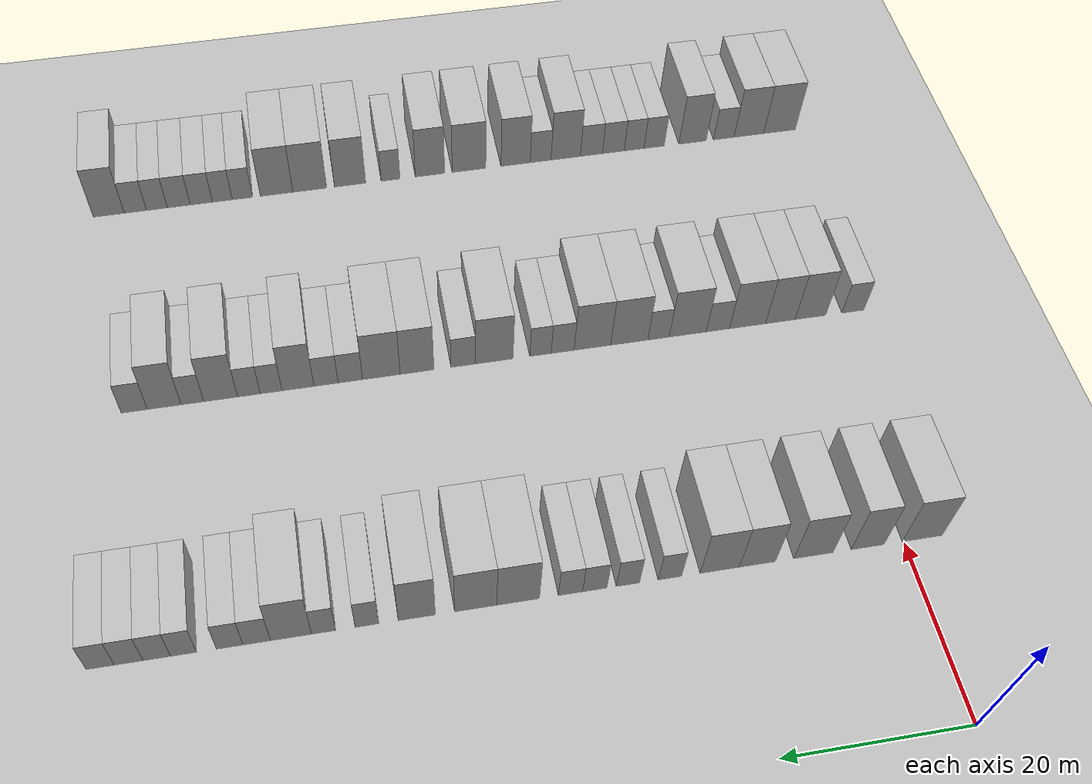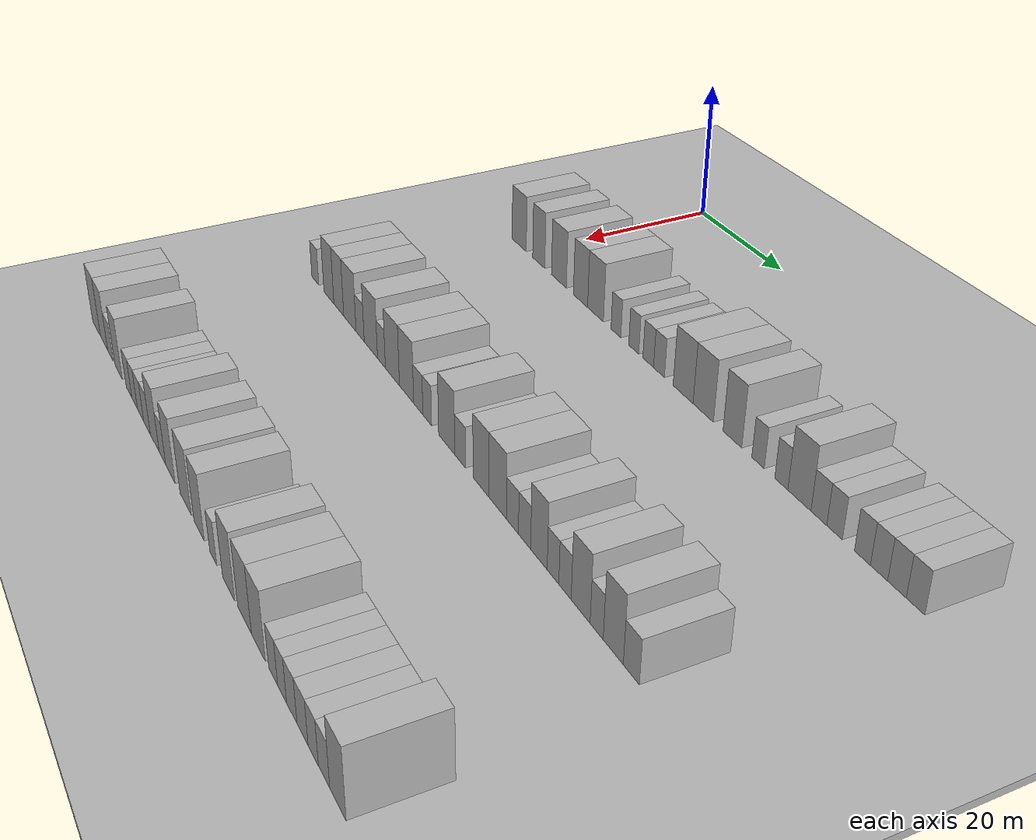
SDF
<sdf version="1.6">
 <world name="default">
  <include><name>ground_plane_1</name><uri>model://HANNAS_ground_plane</uri></include>
  <include>
   <name>ground_plane_2</name>
   <uri>model://HANNAS_ground_plane</uri>
   <pose>100 0 0  0 0 0</pose>
  </include>
  <model name="building_72">
   <static>1</static>
   <pose>25.0000 -1.7976 0 0.000000 0.000000 0.000000</pose>
   <link name="link">
    <pose>0 0 4.50 0 0 0</pose>
    <collision name="collision"><geometry><box><size>10.0000 4.4605 9.0000</size></box></geometry></collision>
    <visual name="visual">
     <cast_shadows>0</cast_shadows>
     <geometry><box><size>10.0000 4.4605 9.0000</size></box></geometry>
     <material>
      <script>
       <uri>model://HANNAS_wall/materials/scripts</uri>
       <uri>model://HANNAS_wall/materials/textures</uri>
       <name>vrc/HANNAS_wall</name>
      </script>
     </material>
    </visual>
   </link>
  </model>
  <model name="building_73">
   <static>1</static>
   <pose>25.0000 4.2577 0 0.000000 0.000000 0.000000</pose>
   <link name="link">
    <pose>0 0 4.50 0 0 0</pose>
    <collision name="collision"><geometry><box><size>10.0000 3.6501 9.0000</size></box></geometry></collision>
    <visual name="visual">
     <cast_shadows>0</cast_shadows>
     <geometry><box><size>10.0000 3.6501 9.0000</size></box></geometry>
     <material>
      <script>
       <uri>model://HANNAS_wall/materials/scripts</uri>
       <uri>model://HANNAS_wall/materials/textures</uri>
       <name>vrc/HANNAS_wall</name>
      </script>
     </material>
    </visual>
   </link>
  </model>
  <model name="building_74">
   <static>1</static>
   <pose>25.0000 10.2392 0 0.000000 0.000000 0.000000</pose>
   <link name="link">
    <pose>0 0 4.50 0 0 0</pose>
    <collision name="collision"><geometry><box><size>10.0000 4.3129 9.0000</size></box></geometry></collision>
    <visual name="visual">
     <cast_shadows>0</cast_shadows>
     <geometry><box><size>10.0000 4.3129 9.0000</size></box></geometry>
     <material>
      <script>
       <uri>model://HANNAS_wall/materials/scripts</uri>
       <uri>model://HANNAS_wall/materials/textures</uri>
       <name>vrc/HANNAS_wall</name>
      </script>
     </material>
    </visual>
   </link>
  </model>
  <model name="building_75">
   <static>1</static>
   <pose>25.0000 16.3610 0 0.000000 0.000000 0.000000</pose>
   <link name="link">
    <pose>0 0 4.50 0 0 0</pose>
    <collision name="collision"><geometry><box><size>10.0000 3.9307 9.0000</size></box></geometry></collision>
    <visual name="visual">
     <cast_shadows>0</cast_shadows>
     <geometry><box><size>10.0000 3.9307 9.0000</size></box></geometry>
     <material>
      <script>
       <uri>model://HANNAS_wall/materials/scripts</uri>
       <uri>model://HANNAS_wall/materials/textures</uri>
       <name>vrc/HANNAS_wall</name>
      </script>
     </material>
    </visual>
   </link>
  </model>
  <model name="building_76">
   <static>1</static>
   <pose>25.0000 20.4498 0 0.000000 0.000000 0.000000</pose>
   <link name="link">
    <pose>0 0 4.50 0 0 0</pose>
    <collision name="collision"><geometry><box><size>10.0000 4.2468 9.0000</size></box></geometry></collision>
    <visual name="visual">
     <cast_shadows>0</cast_shadows>
     <geometry><box><size>10.0000 4.2468 9.0000</size></box></geometry>
     <material>
      <script>
       <uri>model://HANNAS_wall/materials/scripts</uri>
       <uri>model://HANNAS_wall/materials/textures</uri>
       <name>vrc/HANNAS_wall</name>
      </script>
     </material>
    </visual>
   </link>
  </model>
  <model name="building_77">
   <static>1</static>
   <pose>25.0000 25.8314 0 0.000000 0.000000 0.000000</pose>
   <link name="link">
    <pose>0 0 3.00 0 0 0</pose>
    <collision name="collision"><geometry><box><size>10.0000 2.5165 6.0000</size></box></geometry></collision>
    <visual name="visual">
     <cast_shadows>0</cast_shadows>
     <geometry><box><size>10.0000 2.5165 6.0000</size></box></geometry>
     <material>
      <script>
       <uri>model://HANNAS_wall/materials/scripts</uri>
       <uri>model://HANNAS_wall/materials/textures</uri>
       <name>vrc/HANNAS_wall</name>
      </script>
     </material>
    </visual>
   </link>
  </model>
  <model name="building_78">
   <static>1</static>
   <pose>25.0000 30.3293 0 0.000000 0.000000 0.000000</pose>
   <link name="link">
    <pose>0 0 3.00 0 0 0</pose>
    <collision name="collision"><geometry><box><size>10.0000 2.4791 6.0000</size></box></geometry></collision>
    <visual name="visual">
     <cast_shadows>0</cast_shadows>
     <geometry><box><size>10.0000 2.4791 6.0000</size></box></geometry>
     <material>
      <script>
       <uri>model://HANNAS_wall/materials/scripts</uri>
       <uri>model://HANNAS_wall/materials/textures</uri>
       <name>vrc/HANNAS_wall</name>
      </script>
     </material>
    </visual>
   </link>
  </model>
  <model name="building_79">
   <static>1</static>
   <pose>25.0000 33.8580 0 0.000000 0.000000 0.000000</pose>
   <link name="link">
    <pose>0 0 3.00 0 0 0</pose>
    <collision name="collision"><geometry><box><size>10.0000 2.5784 6.0000</size></box></geometry></collision>
    <visual name="visual">
     <cast_shadows>0</cast_shadows>
     <geometry><box><size>10.0000 2.5784 6.0000</size></box></geometry>
     <material>
      <script>
       <uri>model://HANNAS_wall/materials/scripts</uri>
       <uri>model://HANNAS_wall/materials/textures</uri>
       <name>vrc/HANNAS_wall</name>
      </script>
     </material>
    </visual>
   </link>
  </model>
  <model name="building_80">
   <static>1</static>
   <pose>25.0000 36.4311 0 0.000000 0.000000 0.000000</pose>
   <link name="link">
    <pose>0 0 3.00 0 0 0</pose>
    <collision name="collision"><geometry><box><size>10.0000 2.5676 6.0000</size></box></geometry></collision>
    <visual name="visual">
     <cast_shadows>0</cast_shadows>
     <geometry><box><size>10.0000 2.5676 6.0000</size></box></geometry>
     <material>
      <script>
       <uri>model://HANNAS_wall/materials/scripts</uri>
       <uri>model://HANNAS_wall/materials/textures</uri>
       <name>vrc/HANNAS_wall</name>
      </script>
     </material>
    </visual>
   </link>
  </model>
  <model name="building_81">
   <static>1</static>
   <pose>25.0000 41.9562 0 0.000000 0.000000 0.000000</pose>
   <link name="link">
    <pose>0 0 4.50 0 0 0</pose>
    <collision name="collision"><geometry><box><size>10.0000 4.4827 9.0000</size></box></geometry></collision>
    <visual name="visual">
     <cast_shadows>0</cast_shadows>
     <geometry><box><size>10.0000 4.4827 9.0000</size></box></geometry>
     <material>
      <script>
       <uri>model://HANNAS_wall/materials/scripts</uri>
       <uri>model://HANNAS_wall/materials/textures</uri>
       <name>vrc/HANNAS_wall</name>
      </script>
     </material>
    </visual>
   </link>
  </model>
  <model name="building_82">
   <static>1</static>
   <pose>25.0000 46.3979 0 0.000000 0.000000 0.000000</pose>
   <link name="link">
    <pose>0 0 4.50 0 0 0</pose>
    <collision name="collision"><geometry><box><size>10.0000 4.4008 9.0000</size></box></geometry></collision>
    <visual name="visual">
     <cast_shadows>0</cast_shadows>
     <geometry><box><size>10.0000 4.4008 9.0000</size></box></geometry>
     <material>
      <script>
       <uri>model://HANNAS_wall/materials/scripts</uri>
       <uri>model://HANNAS_wall/materials/textures</uri>
       <name>vrc/HANNAS_wall</name>
      </script>
     </material>
    </visual>
   </link>
  </model>
  <model name="building_83">
   <static>1</static>
   <pose>25.0000 52.5170 0 0.000000 0.000000 0.000000</pose>
   <link name="link">
    <pose>0 0 4.50 0 0 0</pose>
    <collision name="collision"><geometry><box><size>10.0000 3.8372 9.0000</size></box></geometry></collision>
    <visual name="visual">
     <cast_shadows>0</cast_shadows>
     <geometry><box><size>10.0000 3.8372 9.0000</size></box></geometry>
     <material>
      <script>
       <uri>model://HANNAS_wall/materials/scripts</uri>
       <uri>model://HANNAS_wall/materials/textures</uri>
       <name>vrc/HANNAS_wall</name>
      </script>
     </material>
    </visual>
   </link>
  </model>
  <model name="building_84">
   <static>1</static>
   <pose>25.0000 57.6536 0 0.000000 0.000000 0.000000</pose>
   <link name="link">
    <pose>0 0 3.00 0 0 0</pose>
    <collision name="collision"><geometry><box><size>10.0000 2.4360 6.0000</size></box></geometry></collision>
    <visual name="visual">
     <cast_shadows>0</cast_shadows>
     <geometry><box><size>10.0000 2.4360 6.0000</size></box></geometry>
     <material>
      <script>
       <uri>model://HANNAS_wall/materials/scripts</uri>
       <uri>model://HANNAS_wall/materials/textures</uri>
       <name>vrc/HANNAS_wall</name>
      </script>
     </material>
    </visual>
   </link>
  </model>
  <model name="building_85">
   <static>1</static>
   <pose>25.0000 62.0953 0 0.000000 0.000000 0.000000</pose>
   <link name="link">
    <pose>0 0 3.00 0 0 0</pose>
    <collision name="collision"><geometry><box><size>10.0000 2.4474 6.0000</size></box></geometry></collision>
    <visual name="visual">
     <cast_shadows>0</cast_shadows>
     <geometry><box><size>10.0000 2.4474 6.0000</size></box></geometry>
     <material>
      <script>
       <uri>model://HANNAS_wall/materials/scripts</uri>
       <uri>model://HANNAS_wall/materials/textures</uri>
       <name>vrc/HANNAS_wall</name>
      </script>
     </material>
    </visual>
   </link>
  </model>
  <model name="building_86">
   <static>1</static>
   <pose>25.0000 65.4123 0 0.000000 0.000000 0.000000</pose>
   <link name="link">
    <pose>0 0 4.50 0 0 0</pose>
    <collision name="collision"><geometry><box><size>10.0000 4.1866 9.0000</size></box></geometry></collision>
    <visual name="visual">
     <cast_shadows>0</cast_shadows>
     <geometry><box><size>10.0000 4.1866 9.0000</size></box></geometry>
     <material>
      <script>
       <uri>model://HANNAS_wall/materials/scripts</uri>
       <uri>model://HANNAS_wall/materials/textures</uri>
       <name>vrc/HANNAS_wall</name>
      </script>
     </material>
    </visual>
   </link>
  </model>
  <model name="building_87">
   <static>1</static>
   <pose>25.0000 68.8927 0 0.000000 0.000000 0.000000</pose>
   <link name="link">
    <pose>0 0 3.00 0 0 0</pose>
    <collision name="collision"><geometry><box><size>10.0000 2.7743 6.0000</size></box></geometry></collision>
    <visual name="visual">
     <cast_shadows>0</cast_shadows>
     <geometry><box><size>10.0000 2.7743 6.0000</size></box></geometry>
     <material>
      <script>
       <uri>model://HANNAS_wall/materials/scripts</uri>
       <uri>model://HANNAS_wall/materials/textures</uri>
       <name>vrc/HANNAS_wall</name>
      </script>
     </material>
    </visual>
   </link>
  </model>
  <model name="building_88">
   <static>1</static>
   <pose>25.0000 71.6180 0 0.000000 0.000000 0.000000</pose>
   <link name="link">
    <pose>0 0 3.00 0 0 0</pose>
    <collision name="collision"><geometry><box><size>10.0000 2.6764 6.0000</size></box></geometry></collision>
    <visual name="visual">
     <cast_shadows>0</cast_shadows>
     <geometry><box><size>10.0000 2.6764 6.0000</size></box></geometry>
     <material>
      <script>
       <uri>model://HANNAS_wall/materials/scripts</uri>
       <uri>model://HANNAS_wall/materials/textures</uri>
       <name>vrc/HANNAS_wall</name>
      </script>
     </material>
    </visual>
   </link>
  </model>
  <model name="building_89">
   <static>1</static>
   <pose>25.0000 76.2591 0 0.000000 0.000000 0.000000</pose>
   <link name="link">
    <pose>0 0 3.00 0 0 0</pose>
    <collision name="collision"><geometry><box><size>10.0000 2.6058 6.0000</size></box></geometry></collision>
    <visual name="visual">
     <cast_shadows>0</cast_shadows>
     <geometry><box><size>10.0000 2.6058 6.0000</size></box></geometry>
     <material>
      <script>
       <uri>model://HANNAS_wall/materials/scripts</uri>
       <uri>model://HANNAS_wall/materials/textures</uri>
       <name>vrc/HANNAS_wall</name>
      </script>
     </material>
    </visual>
   </link>
  </model>
  <model name="building_90">
   <static>1</static>
   <pose>25.0000 78.9266 0 0.000000 0.000000 0.000000</pose>
   <link name="link">
    <pose>0 0 3.00 0 0 0</pose>
    <collision name="collision"><geometry><box><size>10.0000 2.7293 6.0000</size></box></geometry></collision>
    <visual name="visual">
     <cast_shadows>0</cast_shadows>
     <geometry><box><size>10.0000 2.7293 6.0000</size></box></geometry>
     <material>
      <script>
       <uri>model://HANNAS_wall/materials/scripts</uri>
       <uri>model://HANNAS_wall/materials/textures</uri>
       <name>vrc/HANNAS_wall</name>
      </script>
     </material>
    </visual>
   </link>
  </model>
  <model name="building_91">
   <static>1</static>
   <pose>25.0000 81.7208 0 0.000000 0.000000 0.000000</pose>
   <link name="link">
    <pose>0 0 3.00 0 0 0</pose>
    <collision name="collision"><geometry><box><size>10.0000 2.8590 6.0000</size></box></geometry></collision>
    <visual name="visual">
     <cast_shadows>0</cast_shadows>
     <geometry><box><size>10.0000 2.8590 6.0000</size></box></geometry>
     <material>
      <script>
       <uri>model://HANNAS_wall/materials/scripts</uri>
       <uri>model://HANNAS_wall/materials/textures</uri>
       <name>vrc/HANNAS_wall</name>
      </script>
     </material>
    </visual>
   </link>
  </model>
  <model name="building_92">
   <static>1</static>
   <pose>25.0000 84.5416 0 0.000000 0.000000 0.000000</pose>
   <link name="link">
    <pose>0 0 3.00 0 0 0</pose>
    <collision name="collision"><geometry><box><size>10.0000 2.7826 6.0000</size></box></geometry></collision>
    <visual name="visual">
     <cast_shadows>0</cast_shadows>
     <geometry><box><size>10.0000 2.7826 6.0000</size></box></geometry>
     <material>
      <script>
       <uri>model://HANNAS_wall/materials/scripts</uri>
       <uri>model://HANNAS_wall/materials/textures</uri>
       <name>vrc/HANNAS_wall</name>
      </script>
     </material>
    </visual>
   </link>
  </model>
  <model name="building_201">
   <static>1</static>
   <pose>55.0000 -4.3574 0 0.000000 0.000000 0.000000</pose>
   <link name="link">
    <pose>0 0 3.00 0 0 0</pose>
    <collision name="collision"><geometry><box><size>10.0000 2.7539 6.0000</size></box></geometry></collision>
    <visual name="visual">
     <cast_shadows>0</cast_shadows>
     <geometry><box><size>10.0000 2.7539 6.0000</size></box></geometry>
     <material>
      <script>
       <uri>model://HANNAS_wall/materials/scripts</uri>
       <uri>model://HANNAS_wall/materials/textures</uri>
       <name>vrc/HANNAS_wall</name>
      </script>
     </material>
    </visual>
   </link>
  </model>
  <model name="building_202">
   <static>1</static>
   <pose>55.0000 0.9174 0 0.000000 0.000000 0.000000</pose>
   <link name="link">
    <pose>0 0 4.50 0 0 0</pose>
    <collision name="collision"><geometry><box><size>10.0000 3.7958 9.0000</size></box></geometry></collision>
    <visual name="visual">
     <cast_shadows>0</cast_shadows>
     <geometry><box><size>10.0000 3.7958 9.0000</size></box></geometry>
     <material>
      <script>
       <uri>model://HANNAS_wall/materials/scripts</uri>
       <uri>model://HANNAS_wall/materials/textures</uri>
       <name>vrc/HANNAS_wall</name>
      </script>
     </material>
    </visual>
   </link>
  </model>
  <model name="building_203">
   <static>1</static>
   <pose>55.0000 4.6442 0 0.000000 0.000000 0.000000</pose>
   <link name="link">
    <pose>0 0 4.50 0 0 0</pose>
    <collision name="collision"><geometry><box><size>10.0000 3.6578 9.0000</size></box></geometry></collision>
    <visual name="visual">
     <cast_shadows>0</cast_shadows>
     <geometry><box><size>10.0000 3.6578 9.0000</size></box></geometry>
     <material>
      <script>
       <uri>model://HANNAS_wall/materials/scripts</uri>
       <uri>model://HANNAS_wall/materials/textures</uri>
       <name>vrc/HANNAS_wall</name>
      </script>
     </material>
    </visual>
   </link>
  </model>
  <model name="building_204">
   <static>1</static>
   <pose>55.0000 8.6825 0 0.000000 0.000000 0.000000</pose>
   <link name="link">
    <pose>0 0 4.50 0 0 0</pose>
    <collision name="collision"><geometry><box><size>10.0000 4.4188 9.0000</size></box></geometry></collision>
    <visual name="visual">
     <cast_shadows>0</cast_shadows>
     <geometry><box><size>10.0000 4.4188 9.0000</size></box></geometry>
     <material>
      <script>
       <uri>model://HANNAS_wall/materials/scripts</uri>
       <uri>model://HANNAS_wall/materials/textures</uri>
       <name>vrc/HANNAS_wall</name>
      </script>
     </material>
    </visual>
   </link>
  </model>
  <model name="building_205">
   <static>1</static>
   <pose>55.0000 12.3122 0 0.000000 0.000000 0.000000</pose>
   <link name="link">
    <pose>0 0 3.00 0 0 0</pose>
    <collision name="collision"><geometry><box><size>10.0000 2.8407 6.0000</size></box></geometry></collision>
    <visual name="visual">
     <cast_shadows>0</cast_shadows>
     <geometry><box><size>10.0000 2.8407 6.0000</size></box></geometry>
     <material>
      <script>
       <uri>model://HANNAS_wall/materials/scripts</uri>
       <uri>model://HANNAS_wall/materials/textures</uri>
       <name>vrc/HANNAS_wall</name>
      </script>
     </material>
    </visual>
   </link>
  </model>
  <model name="building_206">
   <static>1</static>
   <pose>55.0000 15.9813 0 0.000000 0.000000 0.000000</pose>
   <link name="link">
    <pose>0 0 4.50 0 0 0</pose>
    <collision name="collision"><geometry><box><size>10.0000 4.4974 9.0000</size></box></geometry></collision>
    <visual name="visual">
     <cast_shadows>0</cast_shadows>
     <geometry><box><size>10.0000 4.4974 9.0000</size></box></geometry>
     <material>
      <script>
       <uri>model://HANNAS_wall/materials/scripts</uri>
       <uri>model://HANNAS_wall/materials/textures</uri>
       <name>vrc/HANNAS_wall</name>
      </script>
     </material>
    </visual>
   </link>
  </model>
  <model name="building_207">
   <static>1</static>
   <pose>55.0000 19.5245 0 0.000000 0.000000 0.000000</pose>
   <link name="link">
    <pose>0 0 3.00 0 0 0</pose>
    <collision name="collision"><geometry><box><size>10.0000 2.5890 6.0000</size></box></geometry></collision>
    <visual name="visual">
     <cast_shadows>0</cast_shadows>
     <geometry><box><size>10.0000 2.5890 6.0000</size></box></geometry>
     <material>
      <script>
       <uri>model://HANNAS_wall/materials/scripts</uri>
       <uri>model://HANNAS_wall/materials/textures</uri>
       <name>vrc/HANNAS_wall</name>
      </script>
     </material>
    </visual>
   </link>
  </model>
  <model name="building_208">
   <static>1</static>
   <pose>55.0000 23.0603 0 0.000000 0.000000 0.000000</pose>
   <link name="link">
    <pose>0 0 4.50 0 0 0</pose>
    <collision name="collision"><geometry><box><size>10.0000 4.4825 9.0000</size></box></geometry></collision>
    <visual name="visual">
     <cast_shadows>0</cast_shadows>
     <geometry><box><size>10.0000 4.4825 9.0000</size></box></geometry>
     <material>
      <script>
       <uri>model://HANNAS_wall/materials/scripts</uri>
       <uri>model://HANNAS_wall/materials/textures</uri>
       <name>vrc/HANNAS_wall</name>
      </script>
     </material>
    </visual>
   </link>
  </model>
  <model name="building_209">
   <static>1</static>
   <pose>55.0000 27.4932 0 0.000000 0.000000 0.000000</pose>
   <link name="link">
    <pose>0 0 4.50 0 0 0</pose>
    <collision name="collision"><geometry><box><size>10.0000 4.3834 9.0000</size></box></geometry></collision>
    <visual name="visual">
     <cast_shadows>0</cast_shadows>
     <geometry><box><size>10.0000 4.3834 9.0000</size></box></geometry>
     <material>
      <script>
       <uri>model://HANNAS_wall/materials/scripts</uri>
       <uri>model://HANNAS_wall/materials/textures</uri>
       <name>vrc/HANNAS_wall</name>
      </script>
     </material>
    </visual>
   </link>
  </model>
  <model name="building_210">
   <static>1</static>
   <pose>55.0000 31.0489 0 0.000000 0.000000 0.000000</pose>
   <link name="link">
    <pose>0 0 3.00 0 0 0</pose>
    <collision name="collision"><geometry><box><size>10.0000 2.7279 6.0000</size></box></geometry></collision>
    <visual name="visual">
     <cast_shadows>0</cast_shadows>
     <geometry><box><size>10.0000 2.7279 6.0000</size></box></geometry>
     <material>
      <script>
       <uri>model://HANNAS_wall/materials/scripts</uri>
       <uri>model://HANNAS_wall/materials/textures</uri>
       <name>vrc/HANNAS_wall</name>
      </script>
     </material>
    </visual>
   </link>
  </model>
  <model name="building_211">
   <static>1</static>
   <pose>55.0000 33.6861 0 0.000000 0.000000 0.000000</pose>
   <link name="link">
    <pose>0 0 3.00 0 0 0</pose>
    <collision name="collision"><geometry><box><size>10.0000 2.5466 6.0000</size></box></geometry></collision>
    <visual name="visual">
     <cast_shadows>0</cast_shadows>
     <geometry><box><size>10.0000 2.5466 6.0000</size></box></geometry>
     <material>
      <script>
       <uri>model://HANNAS_wall/materials/scripts</uri>
       <uri>model://HANNAS_wall/materials/textures</uri>
       <name>vrc/HANNAS_wall</name>
      </script>
     </material>
    </visual>
   </link>
  </model>
  <model name="building_212">
   <static>1</static>
   <pose>55.0000 39.1798 0 0.000000 0.000000 0.000000</pose>
   <link name="link">
    <pose>0 0 4.50 0 0 0</pose>
    <collision name="collision"><geometry><box><size>10.0000 4.4407 9.0000</size></box></geometry></collision>
    <visual name="visual">
     <cast_shadows>0</cast_shadows>
     <geometry><box><size>10.0000 4.4407 9.0000</size></box></geometry>
     <material>
      <script>
       <uri>model://HANNAS_wall/materials/scripts</uri>
       <uri>model://HANNAS_wall/materials/textures</uri>
       <name>vrc/HANNAS_wall</name>
      </script>
     </material>
    </visual>
   </link>
  </model>
  <model name="building_213">
   <static>1</static>
   <pose>55.0000 42.8368 0 0.000000 0.000000 0.000000</pose>
   <link name="link">
    <pose>0 0 3.00 0 0 0</pose>
    <collision name="collision"><geometry><box><size>10.0000 2.8733 6.0000</size></box></geometry></collision>
    <visual name="visual">
     <cast_shadows>0</cast_shadows>
     <geometry><box><size>10.0000 2.8733 6.0000</size></box></geometry>
     <material>
      <script>
       <uri>model://HANNAS_wall/materials/scripts</uri>
       <uri>model://HANNAS_wall/materials/textures</uri>
       <name>vrc/HANNAS_wall</name>
      </script>
     </material>
    </visual>
   </link>
  </model>
  <model name="building_214">
   <static>1</static>
   <pose>55.0000 48.2433 0 0.000000 0.000000 0.000000</pose>
   <link name="link">
    <pose>0 0 4.50 0 0 0</pose>
    <collision name="collision"><geometry><box><size>10.0000 3.9398 9.0000</size></box></geometry></collision>
    <visual name="visual">
     <cast_shadows>0</cast_shadows>
     <geometry><box><size>10.0000 3.9398 9.0000</size></box></geometry>
     <material>
      <script>
       <uri>model://HANNAS_wall/materials/scripts</uri>
       <uri>model://HANNAS_wall/materials/textures</uri>
       <name>vrc/HANNAS_wall</name>
      </script>
     </material>
    </visual>
   </link>
  </model>
  <model name="building_215">
   <static>1</static>
   <pose>55.0000 52.3946 0 0.000000 0.000000 0.000000</pose>
   <link name="link">
    <pose>0 0 4.50 0 0 0</pose>
    <collision name="collision"><geometry><box><size>10.0000 4.3627 9.0000</size></box></geometry></collision>
    <visual name="visual">
     <cast_shadows>0</cast_shadows>
     <geometry><box><size>10.0000 4.3627 9.0000</size></box></geometry>
     <material>
      <script>
       <uri>model://HANNAS_wall/materials/scripts</uri>
       <uri>model://HANNAS_wall/materials/textures</uri>
       <name>vrc/HANNAS_wall</name>
      </script>
     </material>
    </visual>
   </link>
  </model>
  <model name="building_216">
   <static>1</static>
   <pose>55.0000 55.9916 0 0.000000 0.000000 0.000000</pose>
   <link name="link">
    <pose>0 0 3.00 0 0 0</pose>
    <collision name="collision"><geometry><box><size>10.0000 2.8313 6.0000</size></box></geometry></collision>
    <visual name="visual">
     <cast_shadows>0</cast_shadows>
     <geometry><box><size>10.0000 2.8313 6.0000</size></box></geometry>
     <material>
      <script>
       <uri>model://HANNAS_wall/materials/scripts</uri>
       <uri>model://HANNAS_wall/materials/textures</uri>
       <name>vrc/HANNAS_wall</name>
      </script>
     </material>
    </visual>
   </link>
  </model>
  <model name="building_217">
   <static>1</static>
   <pose>55.0000 58.8022 0 0.000000 0.000000 0.000000</pose>
   <link name="link">
    <pose>0 0 3.00 0 0 0</pose>
    <collision name="collision"><geometry><box><size>10.0000 2.7897 6.0000</size></box></geometry></collision>
    <visual name="visual">
     <cast_shadows>0</cast_shadows>
     <geometry><box><size>10.0000 2.7897 6.0000</size></box></geometry>
     <material>
      <script>
       <uri>model://HANNAS_wall/materials/scripts</uri>
       <uri>model://HANNAS_wall/materials/textures</uri>
       <name>vrc/HANNAS_wall</name>
      </script>
     </material>
    </visual>
   </link>
  </model>
  <model name="building_218">
   <static>1</static>
   <pose>55.0000 62.0312 0 0.000000 0.000000 0.000000</pose>
   <link name="link">
    <pose>0 0 4.50 0 0 0</pose>
    <collision name="collision"><geometry><box><size>10.0000 3.6683 9.0000</size></box></geometry></collision>
    <visual name="visual">
     <cast_shadows>0</cast_shadows>
     <geometry><box><size>10.0000 3.6683 9.0000</size></box></geometry>
     <material>
      <script>
       <uri>model://HANNAS_wall/materials/scripts</uri>
       <uri>model://HANNAS_wall/materials/textures</uri>
       <name>vrc/HANNAS_wall</name>
      </script>
     </material>
    </visual>
   </link>
  </model>
  <model name="building_219">
   <static>1</static>
   <pose>55.0000 65.1138 0 0.000000 0.000000 0.000000</pose>
   <link name="link">
    <pose>0 0 3.00 0 0 0</pose>
    <collision name="collision"><geometry><box><size>10.0000 2.4968 6.0000</size></box></geometry></collision>
    <visual name="visual">
     <cast_shadows>0</cast_shadows>
     <geometry><box><size>10.0000 2.4968 6.0000</size></box></geometry>
     <material>
      <script>
       <uri>model://HANNAS_wall/materials/scripts</uri>
       <uri>model://HANNAS_wall/materials/textures</uri>
       <name>vrc/HANNAS_wall</name>
      </script>
     </material>
    </visual>
   </link>
  </model>
  <model name="building_220">
   <static>1</static>
   <pose>55.0000 67.6531 0 0.000000 0.000000 0.000000</pose>
   <link name="link">
    <pose>0 0 3.00 0 0 0</pose>
    <collision name="collision"><geometry><box><size>10.0000 2.5818 6.0000</size></box></geometry></collision>
    <visual name="visual">
     <cast_shadows>0</cast_shadows>
     <geometry><box><size>10.0000 2.5818 6.0000</size></box></geometry>
     <material>
      <script>
       <uri>model://HANNAS_wall/materials/scripts</uri>
       <uri>model://HANNAS_wall/materials/textures</uri>
       <name>vrc/HANNAS_wall</name>
      </script>
     </material>
    </visual>
   </link>
  </model>
  <model name="building_221">
   <static>1</static>
   <pose>55.0000 70.8635 0 0.000000 0.000000 0.000000</pose>
   <link name="link">
    <pose>0 0 4.50 0 0 0</pose>
    <collision name="collision"><geometry><box><size>10.0000 3.8391 9.0000</size></box></geometry></collision>
    <visual name="visual">
     <cast_shadows>0</cast_shadows>
     <geometry><box><size>10.0000 3.8391 9.0000</size></box></geometry>
     <material>
      <script>
       <uri>model://HANNAS_wall/materials/scripts</uri>
       <uri>model://HANNAS_wall/materials/textures</uri>
       <name>vrc/HANNAS_wall</name>
      </script>
     </material>
    </visual>
   </link>
  </model>
  <model name="building_222">
   <static>1</static>
   <pose>55.0000 74.0676 0 0.000000 0.000000 0.000000</pose>
   <link name="link">
    <pose>0 0 3.00 0 0 0</pose>
    <collision name="collision"><geometry><box><size>10.0000 2.5691 6.0000</size></box></geometry></collision>
    <visual name="visual">
     <cast_shadows>0</cast_shadows>
     <geometry><box><size>10.0000 2.5691 6.0000</size></box></geometry>
     <material>
      <script>
       <uri>model://HANNAS_wall/materials/scripts</uri>
       <uri>model://HANNAS_wall/materials/textures</uri>
       <name>vrc/HANNAS_wall</name>
      </script>
     </material>
    </visual>
   </link>
  </model>
  <model name="building_223">
   <static>1</static>
   <pose>55.0000 77.2503 0 0.000000 0.000000 0.000000</pose>
   <link name="link">
    <pose>0 0 4.50 0 0 0</pose>
    <collision name="collision"><geometry><box><size>10.0000 3.7965 9.0000</size></box></geometry></collision>
    <visual name="visual">
     <cast_shadows>0</cast_shadows>
     <geometry><box><size>10.0000 3.7965 9.0000</size></box></geometry>
     <material>
      <script>
       <uri>model://HANNAS_wall/materials/scripts</uri>
       <uri>model://HANNAS_wall/materials/textures</uri>
       <name>vrc/HANNAS_wall</name>
      </script>
     </material>
    </visual>
   </link>
  </model>
  <model name="building_224">
   <static>1</static>
   <pose>55.0000 80.6144 0 0.000000 0.000000 0.000000</pose>
   <link name="link">
    <pose>0 0 3.00 0 0 0</pose>
    <collision name="collision"><geometry><box><size>10.0000 2.9317 6.0000</size></box></geometry></collision>
    <visual name="visual">
     <cast_shadows>0</cast_shadows>
     <geometry><box><size>10.0000 2.9317 6.0000</size></box></geometry>
     <material>
      <script>
       <uri>model://HANNAS_wall/materials/scripts</uri>
       <uri>model://HANNAS_wall/materials/textures</uri>
       <name>vrc/HANNAS_wall</name>
      </script>
     </material>
    </visual>
   </link>
  </model>
  <model name="building_347">
   <static>1</static>
   <pose>85.0000 -4.4506 0 0.000000 0.000000 0.000000</pose>
   <link name="link">
    <pose>0 0 4.50 0 0 0</pose>
    <collision name="collision"><geometry><box><size>10.0000 4.3619 9.0000</size></box></geometry></collision>
    <visual name="visual">
     <cast_shadows>0</cast_shadows>
     <geometry><box><size>10.0000 4.3619 9.0000</size></box></geometry>
     <material>
      <script>
       <uri>model://HANNAS_wall/materials/scripts</uri>
       <uri>model://HANNAS_wall/materials/textures</uri>
       <name>vrc/HANNAS_wall</name>
      </script>
     </material>
    </visual>
   </link>
  </model>
  <model name="building_348">
   <static>1</static>
   <pose>85.0000 -0.2628 0 0.000000 0.000000 0.000000</pose>
   <link name="link">
    <pose>0 0 4.50 0 0 0</pose>
    <collision name="collision"><geometry><box><size>10.0000 4.0137 9.0000</size></box></geometry></collision>
    <visual name="visual">
     <cast_shadows>0</cast_shadows>
     <geometry><box><size>10.0000 4.0137 9.0000</size></box></geometry>
     <material>
      <script>
       <uri>model://HANNAS_wall/materials/scripts</uri>
       <uri>model://HANNAS_wall/materials/textures</uri>
       <name>vrc/HANNAS_wall</name>
      </script>
     </material>
    </visual>
   </link>
  </model>
  <model name="building_349">
   <static>1</static>
   <pose>85.0000 3.1465 0 0.000000 0.000000 0.000000</pose>
   <link name="link">
    <pose>0 0 3.00 0 0 0</pose>
    <collision name="collision"><geometry><box><size>10.0000 2.8048 6.0000</size></box></geometry></collision>
    <visual name="visual">
     <cast_shadows>0</cast_shadows>
     <geometry><box><size>10.0000 2.8048 6.0000</size></box></geometry>
     <material>
      <script>
       <uri>model://HANNAS_wall/materials/scripts</uri>
       <uri>model://HANNAS_wall/materials/textures</uri>
       <name>vrc/HANNAS_wall</name>
      </script>
     </material>
    </visual>
   </link>
  </model>
  <model name="building_350">
   <static>1</static>
   <pose>85.0000 7.3947 0 0.000000 0.000000 0.000000</pose>
   <link name="link">
    <pose>0 0 4.50 0 0 0</pose>
    <collision name="collision"><geometry><box><size>10.0000 3.6916 9.0000</size></box></geometry></collision>
    <visual name="visual">
     <cast_shadows>0</cast_shadows>
     <geometry><box><size>10.0000 3.6916 9.0000</size></box></geometry>
     <material>
      <script>
       <uri>model://HANNAS_wall/materials/scripts</uri>
       <uri>model://HANNAS_wall/materials/textures</uri>
       <name>vrc/HANNAS_wall</name>
      </script>
     </material>
    </visual>
   </link>
  </model>
  <model name="building_351">
   <static>1</static>
   <pose>85.0000 12.5981 0 0.000000 0.000000 0.000000</pose>
   <link name="link">
    <pose>0 0 3.00 0 0 0</pose>
    <collision name="collision"><geometry><box><size>10.0000 2.7151 6.0000</size></box></geometry></collision>
    <visual name="visual">
     <cast_shadows>0</cast_shadows>
     <geometry><box><size>10.0000 2.7151 6.0000</size></box></geometry>
     <material>
      <script>
       <uri>model://HANNAS_wall/materials/scripts</uri>
       <uri>model://HANNAS_wall/materials/textures</uri>
       <name>vrc/HANNAS_wall</name>
      </script>
     </material>
    </visual>
   </link>
  </model>
  <model name="building_352">
   <static>1</static>
   <pose>85.0000 15.2833 0 0.000000 0.000000 0.000000</pose>
   <link name="link">
    <pose>0 0 3.00 0 0 0</pose>
    <collision name="collision"><geometry><box><size>10.0000 2.6552 6.0000</size></box></geometry></collision>
    <visual name="visual">
     <cast_shadows>0</cast_shadows>
     <geometry><box><size>10.0000 2.6552 6.0000</size></box></geometry>
     <material>
      <script>
       <uri>model://HANNAS_wall/materials/scripts</uri>
       <uri>model://HANNAS_wall/materials/textures</uri>
       <name>vrc/HANNAS_wall</name>
      </script>
     </material>
    </visual>
   </link>
  </model>
  <model name="building_353">
   <static>1</static>
   <pose>85.0000 18.0683 0 0.000000 0.000000 0.000000</pose>
   <link name="link">
    <pose>0 0 3.00 0 0 0</pose>
    <collision name="collision"><geometry><box><size>10.0000 2.9148 6.0000</size></box></geometry></collision>
    <visual name="visual">
     <cast_shadows>0</cast_shadows>
     <geometry><box><size>10.0000 2.9148 6.0000</size></box></geometry>
     <material>
      <script>
       <uri>model://HANNAS_wall/materials/scripts</uri>
       <uri>model://HANNAS_wall/materials/textures</uri>
       <name>vrc/HANNAS_wall</name>
      </script>
     </material>
    </visual>
   </link>
  </model>
  <model name="building_354">
   <static>1</static>
   <pose>85.0000 21.0059 0 0.000000 0.000000 0.000000</pose>
   <link name="link">
    <pose>0 0 3.00 0 0 0</pose>
    <collision name="collision"><geometry><box><size>10.0000 2.9605 6.0000</size></box></geometry></collision>
    <visual name="visual">
     <cast_shadows>0</cast_shadows>
     <geometry><box><size>10.0000 2.9605 6.0000</size></box></geometry>
     <material>
      <script>
       <uri>model://HANNAS_wall/materials/scripts</uri>
       <uri>model://HANNAS_wall/materials/textures</uri>
       <name>vrc/HANNAS_wall</name>
      </script>
     </material>
    </visual>
   </link>
  </model>
  <model name="building_355">
   <static>1</static>
   <pose>85.0000 24.4401 0 0.000000 0.000000 0.000000</pose>
   <link name="link">
    <pose>0 0 4.50 0 0 0</pose>
    <collision name="collision"><geometry><box><size>10.0000 3.9079 9.0000</size></box></geometry></collision>
    <visual name="visual">
     <cast_shadows>0</cast_shadows>
     <geometry><box><size>10.0000 3.9079 9.0000</size></box></geometry>
     <material>
      <script>
       <uri>model://HANNAS_wall/materials/scripts</uri>
       <uri>model://HANNAS_wall/materials/textures</uri>
       <name>vrc/HANNAS_wall</name>
      </script>
     </material>
    </visual>
   </link>
  </model>
  <model name="building_356">
   <static>1</static>
   <pose>85.0000 27.7703 0 0.000000 0.000000 0.000000</pose>
   <link name="link">
    <pose>0 0 3.00 0 0 0</pose>
    <collision name="collision"><geometry><box><size>10.0000 2.7525 6.0000</size></box></geometry></collision>
    <visual name="visual">
     <cast_shadows>0</cast_shadows>
     <geometry><box><size>10.0000 2.7525 6.0000</size></box></geometry>
     <material>
      <script>
       <uri>model://HANNAS_wall/materials/scripts</uri>
       <uri>model://HANNAS_wall/materials/textures</uri>
       <name>vrc/HANNAS_wall</name>
      </script>
     </material>
    </visual>
   </link>
  </model>
  <model name="building_357">
   <static>1</static>
   <pose>85.0000 31.0772 0 0.000000 0.000000 0.000000</pose>
   <link name="link">
    <pose>0 0 4.50 0 0 0</pose>
    <collision name="collision"><geometry><box><size>10.0000 3.8612 9.0000</size></box></geometry></collision>
    <visual name="visual">
     <cast_shadows>0</cast_shadows>
     <geometry><box><size>10.0000 3.8612 9.0000</size></box></geometry>
     <material>
      <script>
       <uri>model://HANNAS_wall/materials/scripts</uri>
       <uri>model://HANNAS_wall/materials/textures</uri>
       <name>vrc/HANNAS_wall</name>
      </script>
     </material>
    </visual>
   </link>
  </model>
  <model name="building_358">
   <static>1</static>
   <pose>85.0000 37.2058 0 0.000000 0.000000 0.000000</pose>
   <link name="link">
    <pose>0 0 4.50 0 0 0</pose>
    <collision name="collision"><geometry><box><size>10.0000 4.3960 9.0000</size></box></geometry></collision>
    <visual name="visual">
     <cast_shadows>0</cast_shadows>
     <geometry><box><size>10.0000 4.3960 9.0000</size></box></geometry>
     <material>
      <script>
       <uri>model://HANNAS_wall/materials/scripts</uri>
       <uri>model://HANNAS_wall/materials/textures</uri>
       <name>vrc/HANNAS_wall</name>
      </script>
     </material>
    </visual>
   </link>
  </model>
  <model name="building_359">
   <static>1</static>
   <pose>85.0000 42.3127 0 0.000000 0.000000 0.000000</pose>
   <link name="link">
    <pose>0 0 4.50 0 0 0</pose>
    <collision name="collision"><geometry><box><size>10.0000 3.8178 9.0000</size></box></geometry></collision>
    <visual name="visual">
     <cast_shadows>0</cast_shadows>
     <geometry><box><size>10.0000 3.8178 9.0000</size></box></geometry>
     <material>
      <script>
       <uri>model://HANNAS_wall/materials/scripts</uri>
       <uri>model://HANNAS_wall/materials/textures</uri>
       <name>vrc/HANNAS_wall</name>
      </script>
     </material>
    </visual>
   </link>
  </model>
  <model name="building_360">
   <static>1</static>
   <pose>85.0000 47.4415 0 0.000000 0.000000 0.000000</pose>
   <link name="link">
    <pose>0 0 3.00 0 0 0</pose>
    <collision name="collision"><geometry><box><size>10.0000 2.4398 6.0000</size></box></geometry></collision>
    <visual name="visual">
     <cast_shadows>0</cast_shadows>
     <geometry><box><size>10.0000 2.4398 6.0000</size></box></geometry>
     <material>
      <script>
       <uri>model://HANNAS_wall/materials/scripts</uri>
       <uri>model://HANNAS_wall/materials/textures</uri>
       <name>vrc/HANNAS_wall</name>
      </script>
     </material>
    </visual>
   </link>
  </model>
  <model name="building_361">
   <static>1</static>
   <pose>85.0000 52.6706 0 0.000000 0.000000 0.000000</pose>
   <link name="link">
    <pose>0 0 4.50 0 0 0</pose>
    <collision name="collision"><geometry><box><size>10.0000 4.0183 9.0000</size></box></geometry></collision>
    <visual name="visual">
     <cast_shadows>0</cast_shadows>
     <geometry><box><size>10.0000 4.0183 9.0000</size></box></geometry>
     <material>
      <script>
       <uri>model://HANNAS_wall/materials/scripts</uri>
       <uri>model://HANNAS_wall/materials/textures</uri>
       <name>vrc/HANNAS_wall</name>
      </script>
     </material>
    </visual>
   </link>
  </model>
  <model name="building_362">
   <static>1</static>
   <pose>85.0000 57.8412 0 0.000000 0.000000 0.000000</pose>
   <link name="link">
    <pose>0 0 4.50 0 0 0</pose>
    <collision name="collision"><geometry><box><size>10.0000 4.3231 9.0000</size></box></geometry></collision>
    <visual name="visual">
     <cast_shadows>0</cast_shadows>
     <geometry><box><size>10.0000 4.3231 9.0000</size></box></geometry>
     <material>
      <script>
       <uri>model://HANNAS_wall/materials/scripts</uri>
       <uri>model://HANNAS_wall/materials/textures</uri>
       <name>vrc/HANNAS_wall</name>
      </script>
     </material>
    </visual>
   </link>
  </model>
  <model name="building_363">
   <static>1</static>
   <pose>85.0000 62.0814 0 0.000000 0.000000 0.000000</pose>
   <link name="link">
    <pose>0 0 4.50 0 0 0</pose>
    <collision name="collision"><geometry><box><size>10.0000 4.1573 9.0000</size></box></geometry></collision>
    <visual name="visual">
     <cast_shadows>0</cast_shadows>
     <geometry><box><size>10.0000 4.1573 9.0000</size></box></geometry>
     <material>
      <script>
       <uri>model://HANNAS_wall/materials/scripts</uri>
       <uri>model://HANNAS_wall/materials/textures</uri>
       <name>vrc/HANNAS_wall</name>
      </script>
     </material>
    </visual>
   </link>
  </model>
  <model name="building_364">
   <static>1</static>
   <pose>85.0000 66.4406 0 0.000000 0.000000 0.000000</pose>
   <link name="link">
    <pose>0 0 3.00 0 0 0</pose>
    <collision name="collision"><geometry><box><size>10.0000 2.5612 6.0000</size></box></geometry></collision>
    <visual name="visual">
     <cast_shadows>0</cast_shadows>
     <geometry><box><size>10.0000 2.5612 6.0000</size></box></geometry>
     <material>
      <script>
       <uri>model://HANNAS_wall/materials/scripts</uri>
       <uri>model://HANNAS_wall/materials/textures</uri>
       <name>vrc/HANNAS_wall</name>
      </script>
     </material>
    </visual>
   </link>
  </model>
  <model name="building_365">
   <static>1</static>
   <pose>85.0000 68.9750 0 0.000000 0.000000 0.000000</pose>
   <link name="link">
    <pose>0 0 3.00 0 0 0</pose>
    <collision name="collision"><geometry><box><size>10.0000 2.5075 6.0000</size></box></geometry></collision>
    <visual name="visual">
     <cast_shadows>0</cast_shadows>
     <geometry><box><size>10.0000 2.5075 6.0000</size></box></geometry>
     <material>
      <script>
       <uri>model://HANNAS_wall/materials/scripts</uri>
       <uri>model://HANNAS_wall/materials/textures</uri>
       <name>vrc/HANNAS_wall</name>
      </script>
     </material>
    </visual>
   </link>
  </model>
  <model name="building_366">
   <static>1</static>
   <pose>85.0000 71.6353 0 0.000000 0.000000 0.000000</pose>
   <link name="link">
    <pose>0 0 3.00 0 0 0</pose>
    <collision name="collision"><geometry><box><size>10.0000 2.8130 6.0000</size></box></geometry></collision>
    <visual name="visual">
     <cast_shadows>0</cast_shadows>
     <geometry><box><size>10.0000 2.8130 6.0000</size></box></geometry>
     <material>
      <script>
       <uri>model://HANNAS_wall/materials/scripts</uri>
       <uri>model://HANNAS_wall/materials/textures</uri>
       <name>vrc/HANNAS_wall</name>
      </script>
     </material>
    </visual>
   </link>
  </model>
  <model name="building_367">
   <static>1</static>
   <pose>85.0000 74.4801 0 0.000000 0.000000 0.000000</pose>
   <link name="link">
    <pose>0 0 3.00 0 0 0</pose>
    <collision name="collision"><geometry><box><size>10.0000 2.8765 6.0000</size></box></geometry></collision>
    <visual name="visual">
     <cast_shadows>0</cast_shadows>
     <geometry><box><size>10.0000 2.8765 6.0000</size></box></geometry>
     <material>
      <script>
       <uri>model://HANNAS_wall/materials/scripts</uri>
       <uri>model://HANNAS_wall/materials/textures</uri>
       <name>vrc/HANNAS_wall</name>
      </script>
     </material>
    </visual>
   </link>
  </model>
  <model name="building_368">
   <static>1</static>
   <pose>85.0000 77.2288 0 0.000000 0.000000 0.000000</pose>
   <link name="link">
    <pose>0 0 3.00 0 0 0</pose>
    <collision name="collision"><geometry><box><size>10.0000 2.6210 6.0000</size></box></geometry></collision>
    <visual name="visual">
     <cast_shadows>0</cast_shadows>
     <geometry><box><size>10.0000 2.6210 6.0000</size></box></geometry>
     <material>
      <script>
       <uri>model://HANNAS_wall/materials/scripts</uri>
       <uri>model://HANNAS_wall/materials/textures</uri>
       <name>vrc/HANNAS_wall</name>
      </script>
     </material>
    </visual>
   </link>
  </model>
  <model name="building_369">
   <static>1</static>
   <pose>85.0000 79.9292 0 0.000000 0.000000 0.000000</pose>
   <link name="link">
    <pose>0 0 3.00 0 0 0</pose>
    <collision name="collision"><geometry><box><size>10.0000 2.7798 6.0000</size></box></geometry></collision>
    <visual name="visual">
     <cast_shadows>0</cast_shadows>
     <geometry><box><size>10.0000 2.7798 6.0000</size></box></geometry>
     <material>
      <script>
       <uri>model://HANNAS_wall/materials/scripts</uri>
       <uri>model://HANNAS_wall/materials/textures</uri>
       <name>vrc/HANNAS_wall</name>
      </script>
     </material>
    </visual>
   </link>
  </model>
  <model name="building_370">
   <static>1</static>
   <pose>85.0000 83.2423 0 0.000000 0.000000 0.000000</pose>
   <link name="link">
    <pose>0 0 4.50 0 0 0</pose>
    <collision name="collision"><geometry><box><size>10.0000 3.8464 9.0000</size></box></geometry></collision>
    <visual name="visual">
     <cast_shadows>0</cast_shadows>
     <geometry><box><size>10.0000 3.8464 9.0000</size></box></geometry>
     <material>
      <script>
       <uri>model://HANNAS_wall/materials/scripts</uri>
       <uri>model://HANNAS_wall/materials/textures</uri>
       <name>vrc/HANNAS_wall</name>
      </script>
     </material>
    </visual>
   </link>
  </model>
 </world>
</sdf>
